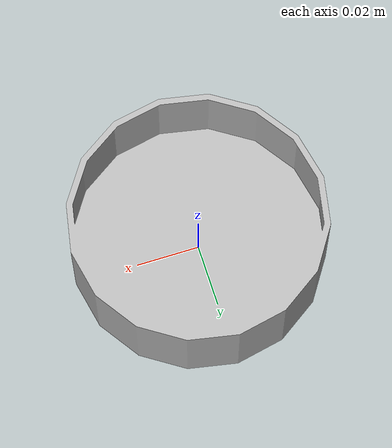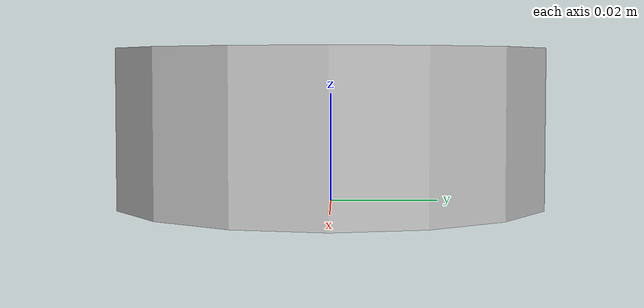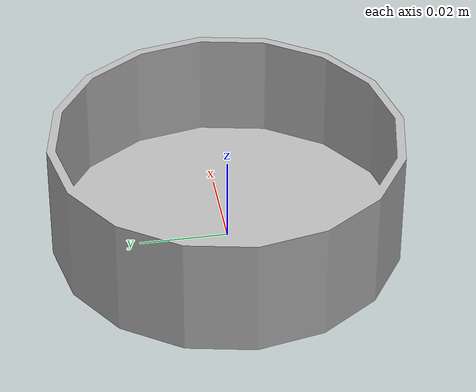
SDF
<?xml version="1.0" ?>
<sdf version="1.5">
  <model name="case_base">
    <link name="link">
      <pose>0 0 0.014085 0 0 0</pose>
      <inertial>
        <mass>0.0223</mass>
        <inertia>
          <ixx>1.93146783725e-05</ixx>
          <ixy>0</ixy>
          <ixz>0</ixz>
          <iyy>1.93146783725e-05</iyy>
          <iyz>0</iyz>
          <izz>3.5680000000000004e-05</izz>
        </inertia>
      </inertial>

      <collision name="collision">
        <geometry>
          <mesh>
            <uri>model://case_base/meshes/case_base.stl</uri>
          </mesh>
        </geometry>
      </collision>

      <visual name="visual">
        <geometry>
          <mesh>
            <uri>model://case_base/meshes/case_base.stl</uri>
          </mesh>
        </geometry>
        <material>
          <script>
            <uri>file://media/materials/scripts/gazebo.material</uri>
            <name>Gazebo/Chrome</name>
          </script>
        </material>
      </visual>

    </link>
  </model>
</sdf>
